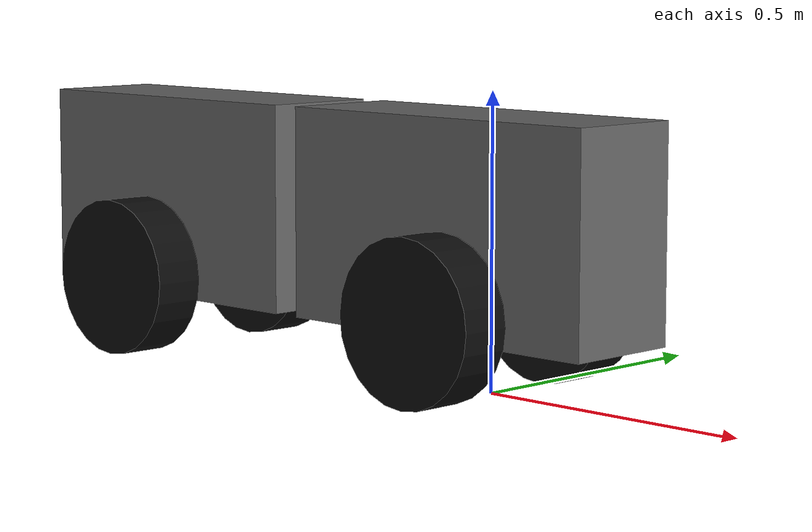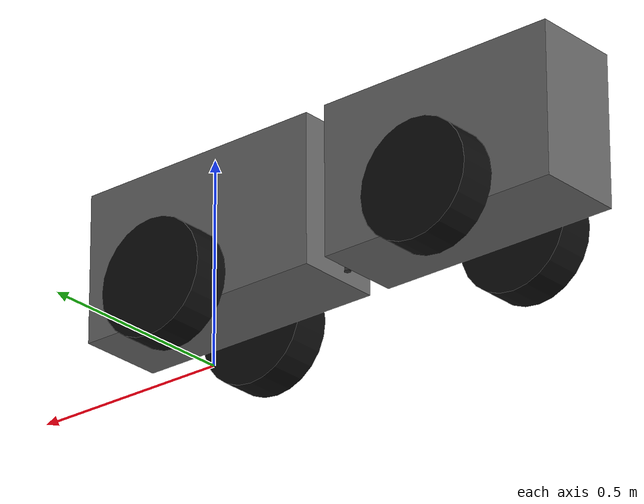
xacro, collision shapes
<?xml version="1.0" encoding="UTF-8"?>
<robot xmlns:xacro="http://www.ros.org/wiki/xacro" name="Floribot">

  <xacro:property name="height_wagon" value="0.363" />
  <xacro:property name="width_wagon" value="0.213" />
  <xacro:property name="length_wagon_front" value="0.635" />
  <xacro:property name="length_wagon_rear" value="0.605" />

  <xacro:property name="ghost_size" value="0.01" />
  <xacro:property name="base_2_front_wagon" value="0.04" />
  <xacro:property name="axesRear_2_rear_wagon" value="0.025" />

  <xacro:property name="wheel_radius" value="0.140" />
  <xacro:property name="wheel_thickness" value="0.09" />
  <xacro:property name="x_joint_wheel_front" value="0" />
  <xacro:property name="y_joint_wheel_front" value="0.167" />
  <xacro:property name="x_joint_wheel_back" value="0" />
  <xacro:property name="y_joint_wheel_back" value="0.167" />

  <xacro:property name="radius" value="0.008" />
  <xacro:property name="vertical_length" value="0.06" />
  <xacro:property name="horizontal_length" value="0.055" />
  <xacro:property name="wheel_joint_2_mid_joint" value="0.383" />

  <xacro:property name="pi" value="3.141592653589793" />

  <!-- Base Link -->
  <link name="base_footprint"/>

  <link name="base_link">
    <visual>
      <origin xyz="0 0 ${ghost_size}" rpy="0 0 0"/>
      <geometry>
        <box size="${ghost_size} ${ghost_size} ${ghost_size}"/>
      </geometry>
      <material name="base_mat">
        <color rgba="0.0 0.8 0.8 1.0"/>
      </material>
    </visual>
  </link>

  <joint name="base_footprint_joint" type="fixed">
    <parent link="base_footprint"/>
    <child link="base_link"/>
    <origin xyz="0 0 ${wheel_radius}" rpy="0 0 0"/>
  </joint>

  <!-- Front Section -->
  <link name="axesFront">
    <inertial>
      <mass value="2.0"/>
      <inertia ixx="0.01" ixy="0.0" ixz="0.0" iyy="0.01" iyz="0.0" izz="0.01"/>
    </inertial>
  </link>

  <joint name="base_link_2_axesFront" type="fixed">
    <parent link="base_link"/>
    <child link="axesFront"/>
    <origin xyz="0 0 0"/>
  </joint>

  <joint name="j_base_2_front_wagon" type="fixed">
    <parent link="base_link"/>
    <child link="front_wagon"/>
    <origin xyz="${-base_2_front_wagon} 0 0"/>
  </joint>

  <link name="front_wagon">
    <visual>
      <origin xyz="-${length_wagon_front/2+0.0255} 0 -${wheel_radius}" rpy="0 0 0"/>
      <geometry>
        <mesh filename="file:///ws/src/floribot_gz_description/meshes/Vorderwagen.stl" scale="0.001 0.001 0.001"/>
      </geometry>
      <material name="front_wagon_mat">
        <color rgba="0.4 0.4 0.4 1.0"/>
      </material>
    </visual>
    <collision>
      <origin xyz="0 0 ${wheel_radius}" rpy="0 0 0"/>
      <geometry>
        <box size="${length_wagon_front} ${width_wagon} ${height_wagon}"/>
      </geometry>
    </collision>
    <inertial>
      <origin xyz="0 0 ${wheel_radius}" rpy="0 0 0"/>
      <mass value="31.0"/>
      <inertia ixx="0.3853" ixy="0.0001197" ixz="-0.0128" iyy="1.0" iyz="0.0000149" izz="0.8678"/>
    </inertial>
  </link>

  <!-- Knickgelenk -->
  <link name="jointFront">
    <visual>
      <geometry>
        <cylinder length="${vertical_length}" radius="${radius}"/>
      </geometry>
      <material name="joint_mat">
        <color rgba="0.2 0.2 0.2 1.0"/>
      </material>
    </visual>
    <collision>
      <geometry>
        <cylinder length="${vertical_length}" radius="${radius}"/>
      </geometry>
    </collision>
    <inertial>
      <mass value="2.0"/>
      <inertia ixx="0.01" ixy="0.0" ixz="0.0" iyy="0.01" iyz="0.0" izz="0.01"/>
    </inertial>
  </link>

  <joint name="body_angle_roll" type="revolute">
    <axis xyz="1 0 0"/>
    <limit effort="100.0" lower="-0.3" upper="0.3" velocity="0.5"/>
    <parent link="axesFront"/>
    <child link="jointFront"/>
    <origin xyz="${-wheel_joint_2_mid_joint} 0 0"/>
  </joint>

  <link name="jointRear">
    <visual>
      <origin xyz="0 0 0" rpy="${pi/2} 0 0"/>
      <geometry>
        <cylinder length="${horizontal_length}" radius="${radius}"/>
      </geometry>
      <material name="joint_rear_mat">
        <color rgba="0.2 0.2 0.2 1.0"/>
      </material>
    </visual>
    <collision>
      <origin xyz="0 0 0" rpy="${pi/2} 0 0"/>
      <geometry>
        <cylinder length="${horizontal_length}" radius="${radius}"/>
      </geometry>
    </collision>
    <inertial>
      <mass value="2.0"/>
      <inertia ixx="0.01" ixy="0.0" ixz="0.0" iyy="0.01" iyz="0.0" izz="0.01"/>
    </inertial>
  </link>

  <joint name="body_angle" type="revolute">
    <axis xyz="0 0 1"/>
    <limit effort="100.0" lower="-1.57" upper="1.57" velocity="0.5"/>
    <parent link="jointFront"/>
    <child link="jointRear"/>
    <origin xyz="0 0 0"/>
  </joint>

  <!-- Rear Section -->
  <link name="axesRear">
    <visual>
      <origin xyz="0 0 ${wheel_radius}" rpy="0 0 0"/>
      <geometry>
        <box size="${ghost_size} ${ghost_size} ${ghost_size}"/>
      </geometry>
      <material name="rear_axis_mat">
        <color rgba="0 0 0.8 1.0"/>
      </material>
    </visual>
    <collision>
      <origin xyz="0 0 ${wheel_radius}" rpy="0 0 0"/>
      <geometry>
        <box size="${ghost_size} ${ghost_size} ${ghost_size}"/>
      </geometry>
    </collision>
    <inertial>
      <origin xyz="0 0 ${wheel_radius}" rpy="0 0 0"/>
      <mass value="2.0"/>
      <inertia ixx="0.01" ixy="0.0" ixz="0.0" iyy="0.01" iyz="0.0" izz="0.01"/>
    </inertial>
  </link>

  <joint name="j_jointRear_rear_wagon" type="fixed">
    <parent link="jointRear"/>
    <child link="axesRear"/>
    <origin xyz="${-wheel_joint_2_mid_joint + vertical_length/2} 0 0"/>
  </joint>

  <joint name="j_axesRear_2_rear_wagon" type="fixed">
    <parent link="axesRear"/>
    <child link="rear_wagon"/>
    <origin xyz="${axesRear_2_rear_wagon} 0 0"/>
  </joint>

  <link name="rear_wagon">
    <visual>
      <origin xyz="${length_wagon_rear/2+0.056} 0 -${wheel_radius}" rpy="0 0 0"/>
      <geometry>
        <mesh filename="file:///ws/src/floribot_gz_description/meshes/Hinterwagen.stl" scale="0.001 0.001 0.001"/>
      </geometry>
      <material name="rear_wagon_mat">
        <color rgba="0.4 0.4 0.4 1.0"/>
      </material>
    </visual>
    <collision>
      <origin xyz="0 0 ${wheel_radius}" rpy="0 0 0"/>
      <geometry>
        <box size="${length_wagon_rear} ${width_wagon} ${height_wagon}"/>
      </geometry>
    </collision>
    <inertial>
      <origin xyz="0 0 ${wheel_radius}" rpy="0 0 0"/>
      <mass value="33.0"/>
      <inertia ixx="0.4137" ixy="0.00027" ixz="0.007359" iyy="1.047" iyz="0.0001775" izz="0.9021"/>
    </inertial>
  </link>

  <!-- Wheels -->
  <xacro:macro name="wheel" params="name parent offset_x offset_y is_right visual_y_offset">
    <link name="${name}">
      <visual>
        <origin xyz="0 ${visual_y_offset} 0" rpy="${pi/2} 0 ${is_right * pi}"/>
        <geometry>
          <mesh filename="file:///ws/src/floribot_gz_description/meshes/Reifen.stl" scale="0.001 0.001 0.001"/>
        </geometry>
        <material name="wheel_mat">
          <color rgba="0.05 0.05 0.05 1.0"/>
        </material>
      </visual>
      <collision>
        <origin xyz="0 0 0" rpy="${pi/2} 0 0"/>
        <geometry>
          <cylinder length="${wheel_thickness}" radius="${wheel_radius}"/>
        </geometry>
      </collision>
      <inertial>
        <mass value="2.4"/>
        <inertia ixx="0.014" ixy="0.0" ixz="0.0" iyy="0.026" iyz="0.0" izz="0.014"/>
      </inertial>
    </link>

    <joint name="joint_${name}" type="continuous">
      <parent link="${parent}"/>
      <child link="${name}"/>
      <axis xyz="0 1 0"/>
      <origin xyz="${offset_x} ${offset_y} 0" rpy="0 0 0"/>
    </joint>

    <!-- Gazebo Reibung und Materialeigenschaften -->
    <gazebo reference="${name}">
      <mu1>1.5</mu1>
      <mu2>1.5</mu2>
      <kp>10000000.0</kp>
      <kd>1.0</kd>
      <minDepth>0.005</minDepth>
    </gazebo>
  </xacro:macro>

  <xacro:wheel name="frontLeft" parent="axesFront" offset_x="${x_joint_wheel_front}" offset_y="${y_joint_wheel_front}" is_right="0" visual_y_offset="-${wheel_thickness/2-0.0095}"/>
  <xacro:wheel name="frontRight" parent="axesFront" offset_x="${x_joint_wheel_front}" offset_y="-${y_joint_wheel_front}" is_right="1" visual_y_offset="${wheel_thickness/2-0.0095}"/>
  <xacro:wheel name="rearLeft" parent="axesRear" offset_x="${x_joint_wheel_back}" offset_y="${y_joint_wheel_back}" is_right="0" visual_y_offset="-${wheel_thickness/2-0.0095}"/>
  <xacro:wheel name="rearRight" parent="axesRear" offset_x="${x_joint_wheel_back}" offset_y="-${y_joint_wheel_back}" is_right="1" visual_y_offset="${wheel_thickness/2-0.0095}"/>

  <!-- Gazebo Motor Plugins -->
  <gazebo>
    <plugin filename="gz-sim-joint-controller-system" name="gz::sim::systems::JointController">
      <joint_name>joint_frontLeft</joint_name>
      <topic>/sim/joint_frontLeft/cmd_vel</topic>
    </plugin>
    <plugin filename="gz-sim-joint-controller-system" name="gz::sim::systems::JointController">
      <joint_name>joint_frontRight</joint_name>
      <topic>/sim/joint_frontRight/cmd_vel</topic>
    </plugin>
    <plugin filename="gz-sim-joint-controller-system" name="gz::sim::systems::JointController">
      <joint_name>joint_rearLeft</joint_name>
      <topic>/sim/joint_rearLeft/cmd_vel</topic>
    </plugin>
    <plugin filename="gz-sim-joint-controller-system" name="gz::sim::systems::JointController">
      <joint_name>joint_rearRight</joint_name>
      <topic>/sim/joint_rearRight/cmd_vel</topic>
    </plugin>
  </gazebo>

</robot>
